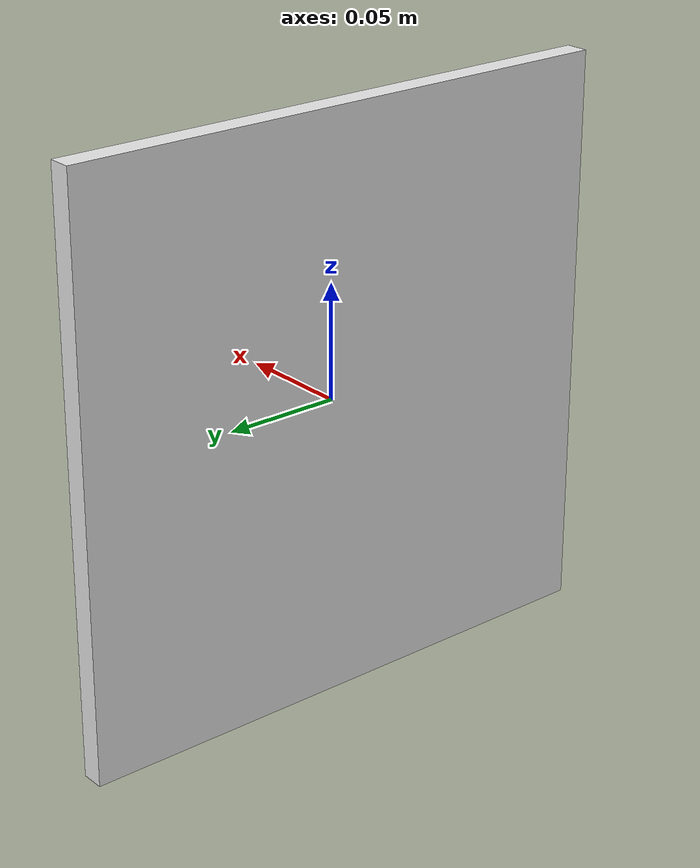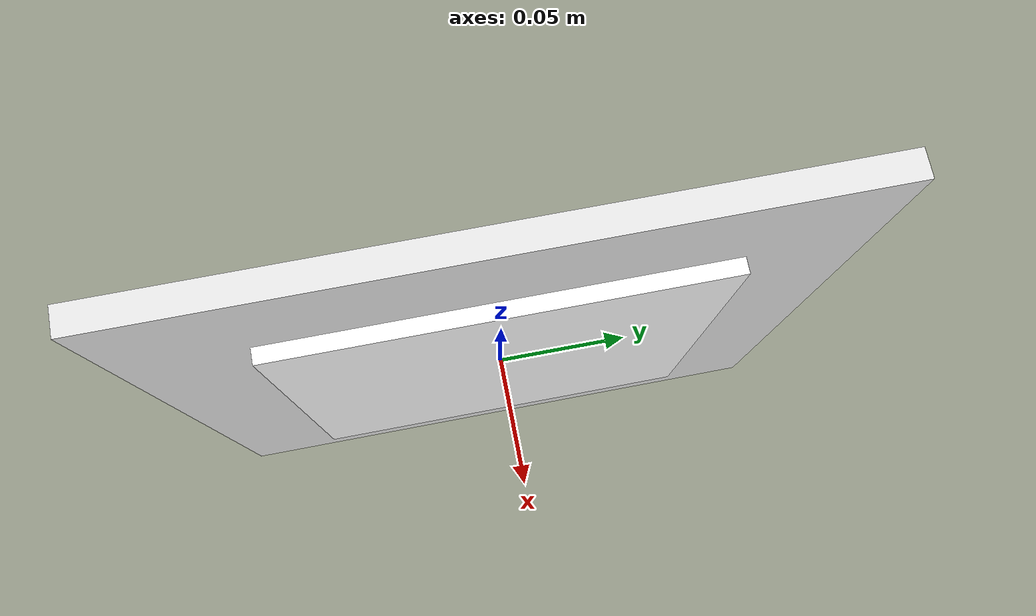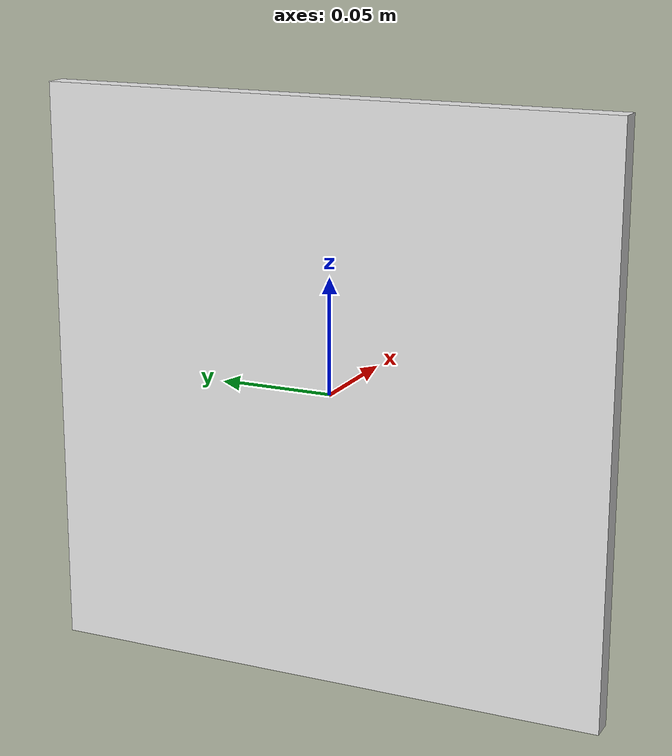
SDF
<?xml version="1.0"?>
<sdf version="1.9">
  <model name="apriltag_dock_marker">
    <static>true</static>
    <link name="link">
      <visual name="tag_face">
        <geometry>
          <box>
            <size>0.01 0.162 0.162</size>
          </box>
        </geometry>
        <material>
          <ambient>1 1 1 1</ambient>
          <diffuse>1 1 1 1</diffuse>
          <specular>0 0 0 1</specular>
          <pbr>
            <metal>
              <albedo_map>/ros2_ws/install/my_robot_description/share/my_robot_description/worlds/sample_blender/apriltag_dock_marker/materials/textures/tag36h11_0.png</albedo_map>
              <metalness>0.0</metalness>
              <roughness>1.0</roughness>
            </metal>
          </pbr>
        </material>
      </visual>
      <visual name="backing_plate">
        <pose>-0.006 0 0 0 0 0</pose>
        <geometry>
          <box>
            <size>0.01 0.25 0.25</size>
          </box>
        </geometry>
        <material>
          <ambient>0.9 0.9 0.9 1</ambient>
          <diffuse>0.9 0.9 0.9 1</diffuse>
        </material>
      </visual>
    </link>
  </model>
</sdf>
